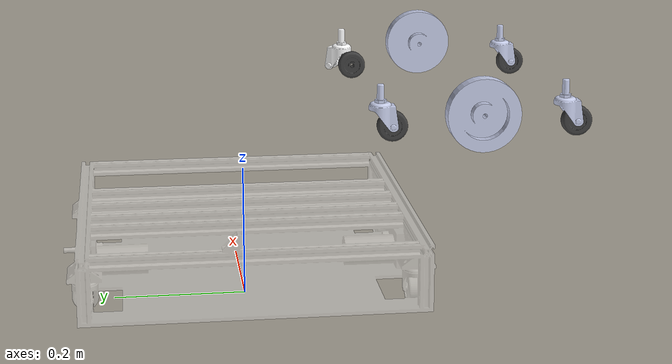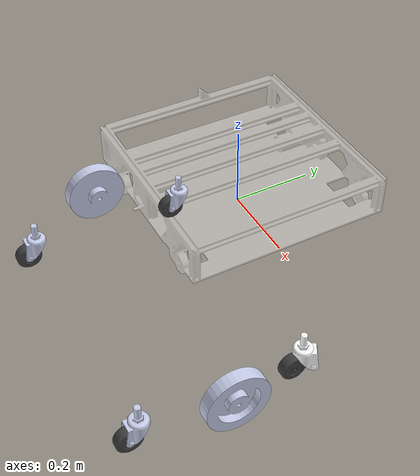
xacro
<?xml version="1.0"?>
<robot xmlns:xacro="http://www.ros.org/wiki/xacro" name="diffdrive" >

  <link name="base_footprint"></link>
  <joint name="base_link_to_base_footprint" type="fixed">
    <origin xyz="0 0 0.05" rpy="0 0 0"/>
    <parent link="base_footprint"/>
    <child link="base_link"/>
  </joint>

 <link
    name="base_link">
    <inertial>
      <origin
        xyz="0.410002757772882 0.223304099954227 0.383656044234519"
        rpy="0 0 0" />
      <mass
        value="0.1" />
      <inertia
        ixx="0.0338286081756613"
        ixy="2.69812394512863E-07"
        ixz="6.04312596661445E-10"
        iyy="0.0771999899846764"
        iyz="1.18867676606539E-08"
        izz="0.0441560434041183" />
    </inertial>
    <visual>
      <origin
        xyz="0 0 0"
        rpy="0 0 0" />
      <geometry>
        <mesh
          filename="file:///$(find my_robot_description)/meshes/diffdrive_meshes/base_link.STL" />
      </geometry>
      <material
        name="">
        <color
          rgba="1 1 1 0.4" />
      </material>
    </visual>
    <collision>
      <origin
        xyz="0 0 0"
        rpy="0 0 0" />
      <geometry>
        <mesh
          filename="file:///$(find my_robot_description)/meshes/diffdrive_meshes/base_link.STL" />
      </geometry>
    </collision>
  </link>

  <link
    name="caster_wheel_01">
    <inertial>
      <origin
        xyz="0.00442419024671004 0.0407882700915736 5.11365806366015E-08"
        rpy="0 0 0" />
      <mass
        value="0.0159163609587196" />
      <inertia
        ixx="0.01" ixy="0.0" ixz="0.0"
        iyy="0.01" iyz="0.0"
        izz="0.01"/>
    </inertial>
    <visual>
      <origin
        xyz="0 0 0"
        rpy="0 0 0" />
      <geometry>
        <mesh
          filename="file:///$(find my_robot_description)/meshes/diffdrive_meshes/caster_wheel_01.STL"/>
      </geometry>
      <material
        name="">
        <color
          rgba="1 1 1 1" />
      </material>
    </visual>
    <collision>
      <origin
        xyz="0 0 0"
        rpy="0 0 0" />
      <geometry>
        <mesh
          filename="file:///$(find my_robot_description)/meshes/diffdrive_meshes/caster_wheel_01.STL" />
      </geometry>
    </collision>
  </link>

  <joint
    name="joint_caster_wheel_01"
    type="continuous">
    <origin
      xyz="0.649922237049609 -0.238297834751047 0.157919253158435"
      rpy="1.5707963267949 0 -1.55646155726161" />
    <parent
      link="base_link" />
    <child
      link="caster_wheel_01" />
    <axis
      xyz="0 1 0" />
  </joint>

  <link
    name="caster_01">
    <inertial>
      <origin
        xyz="0.0214652433425613 0.00180092427509927 0"
        rpy="0 0 0" />
      <mass
        value="0.0351037181525611" />
      <inertia
        ixx="0.01" ixy="0.0" ixz="0.0"
        iyy="0.01" iyz="0.0"
        izz="0.01"/>
    </inertial>
    <visual>
      <origin
        xyz="0 0 0"
        rpy="0 0 0" />
      <geometry>
        <mesh
          filename="file:///$(find my_robot_description)/meshes/diffdrive_meshes/caster_01.STL" />
      </geometry>
      <material
        name="">
        <color
          rgba="0.250980392156863 0.250980392156863 0.250980392156863 1" />
      </material>
    </visual>
    <collision>
      <origin
        xyz="0 0 0"
        rpy="0 0 0" />
      <geometry>
        <mesh
          filename="file:///$(find my_robot_description)/meshes/diffdrive_meshes/caster_01.STL" />
      </geometry>
    </collision>
  </link>

  <joint
    name="joint_caster_01"
    type="continuous">
    <origin
      xyz="0 0 0"
      rpy="0 0 0.296802859073811" />
    <parent
      link="caster_wheel_01" />
    <child
      link="caster_01" />
    <axis
      xyz="0.292464356117457 0.956276424681065 0" />
  </joint>

  <link
    name="caster_wheel_02">
    <inertial>
      <origin
        xyz="-0.00376546230151442 0.0407882700171175 -0.00232266139324588"
        rpy="0 0 0" />
      <mass
        value="0.0159163608550056" />
      <inertia
        ixx="0.01" ixy="0.0" ixz="0.0"
        iyy="0.01" iyz="0.0"
        izz="0.01"/>
    </inertial>
    <visual>
      <origin
        xyz="0 0 0"
        rpy="0 0 0" />
      <geometry>
        <mesh
          filename="file:///$(find my_robot_description)/meshes/diffdrive_meshes/caster_wheel_02.STL" />
      </geometry>
      <material
        name="">
        <color
          rgba="0.792156862745098 0.819607843137255 0.933333333333333 1" />
      </material>
    </visual>
    <collision>
      <origin
        xyz="0 0 0"
        rpy="0 0 0" />
      <geometry>
        <mesh
          filename="file:///$(find my_robot_description)/meshes/diffdrive_meshes/caster_wheel_02.STL" />
      </geometry>
    </collision>
  </link>

  <joint
    name="joint_caster_wheel_02"
    type="continuous">
    <origin
      xyz="0.649922237049609 -0.548297834751047 0.157919253158437"
      rpy="1.5707963267949 0 2.14107688053925" />
    <parent
      link="base_link" />
    <child
      link="caster_wheel_02" />
    <axis
      xyz="0 1 0" />
  </joint>

  <link
    name="caster_02">
    <inertial>
      <origin
        xyz="0.0214652433425611 0.00180092427509934 1.11022302462516E-16"
        rpy="0 0 0" />
      <mass
        value="0.0351037181525611" />
      <inertia
        ixx="0.01" ixy="0.0" ixz="0.0"
        iyy="0.01" iyz="0.0"
        izz="0.01"/>
    </inertial>
    <visual>
      <origin
        xyz="0 0 0"
        rpy="0 0 0" />
      <geometry>
        <mesh
          filename="file:///$(find my_robot_description)/meshes/diffdrive_meshes/caster_02.STL" />
      </geometry>
      <material
        name="">
        <color
          rgba="0.250980392156863 0.250980392156863 0.250980392156863 1" />
      </material>
    </visual>
    <collision>
      <origin
        xyz="0 0 0"
        rpy="0 0 0" />
      <geometry>
        <mesh
          filename="file:///$(find my_robot_description)/meshes/diffdrive_meshes/caster_02.STL" />
      </geometry>
    </collision>
  </link>

  <joint
    name="joint_caster_02"
    type="continuous">
    <origin
      xyz="0 0 0"
      rpy="2.96311522163044 0.525941308677483 2.79662415169577" />
    <parent
      link="caster_wheel_02" />
    <child
      link="caster_02" />
    <axis
      xyz="0.292464356117457 0.956276424681065 0" />
  </joint>

  <link
    name="caster_wheel_03">
    <inertial>
      <origin
        xyz="-0.00376546080228934 0.0407882711178764 -0.00232265994952238"
        rpy="0 0 0" />
      <mass
        value="0.0159163611002415" />
      <inertia
        ixx="0.01" ixy="0.0" ixz="0.0"
        iyy="0.01" iyz="0.0"
        izz="0.01"/>
    </inertial>
    <visual>
      <origin
        xyz="0 0 0"
        rpy="0 0 0" />
      <geometry>
        <mesh
          filename="file:///$(find my_robot_description)/meshes/diffdrive_meshes/caster_wheel_03.STL" />
      </geometry>
      <material
        name="">
        <color
          rgba="0.792156862745098 0.819607843137255 0.933333333333333 1" />
      </material>
    </visual>
    <collision>
      <origin
        xyz="0 0 0"
        rpy="0 0 0" />
      <geometry>
        <mesh
          filename="file:///$(find my_robot_description)/meshes/diffdrive_meshes/caster_wheel_03.STL" />
      </geometry>
    </collision>
  </link>

  <joint
    name="joint_caster_wheel_03"
    type="continuous">
    <origin
      xyz="0.169922237049587 -0.548297834751047 0.157919253158437"
      rpy="1.5707963267949 0 2.11677958982226" />
    <parent
      link="base_link" />
    <child
      link="caster_wheel_03" />
    <axis
      xyz="0 1 0" />
  </joint>
  <link
    name="caster_03">
    <inertial>
      <origin
        xyz="0.0214652433425609 0.00180092427509926 1.11022302462516E-16"
        rpy="0 0 0" />
      <mass
        value="0.0351037181525611" />
      <inertia
        ixx="0.01" ixy="0.0" ixz="0.0"
        iyy="0.01" iyz="0.0"
        izz="0.01"/>
    </inertial>
    <visual>
      <origin
        xyz="0 0 0"
        rpy="0 0 0" />
      <geometry>
        <mesh
          filename="file:///$(find my_robot_description)/meshes/diffdrive_meshes/caster_03.STL" />
      </geometry>
      <material
        name="">
        <color
          rgba="0.250980392156863 0.250980392156863 0.250980392156863 1" />
      </material>
    </visual>
    <collision>
      <origin
        xyz="0 0 0"
        rpy="0 0 0" />
      <geometry>
        <mesh
          filename="file:///$(find my_robot_description)/meshes/diffdrive_meshes/caster_03.STL" />
      </geometry>
    </collision>
  </link>

  <joint
    name="joint_caster_03"
    type="continuous">
    <origin
      xyz="0 0 0"
      rpy="2.96311522163044 0.525941308677473 2.79662415169576" />
    <parent
      link="caster_wheel_03" />
    <child
      link="caster_03" />
    <axis
      xyz="0.292464356117462 0.956276424681064 0" />
  </joint>

  <link
    name="caster_wheel_04">
    <inertial>
      <origin
        xyz="0.0404249060706092 -0.00700596278140952 -5.14370523119201E-08"
        rpy="0 0 0" />
      <mass
        value="0.0159163608704481" />
      <inertia
        ixx="0.01" ixy="0.0" ixz="0.0"
        iyy="0.01" iyz="0.0"
        izz="0.01"/>
    </inertial>
    <visual>
      <origin
        xyz="0 0 0"
        rpy="0 0 0" />
      <geometry>
        <mesh
          filename="file:///$(find my_robot_description)/meshes/diffdrive_meshes/caster_wheel_04.STL" />
      </geometry>
      <material
        name="">
        <color
          rgba="0.792156862745098 0.819607843137255 0.929411764705882 1" />
      </material>
    </visual>
    <collision>
      <origin
        xyz="0 0 0"
        rpy="0 0 0" />
      <geometry>
        <mesh
          filename="file:///$(find my_robot_description)/meshes/diffdrive_meshes/caster_wheel_04.STL" />
      </geometry>
    </collision>
  </link>

  <joint
    name="joint_caster_wheel_04"
    type="continuous">
    <origin
      xyz="0.169922237049587 -0.238297834751047 0.157919253158437"
      rpy="-1.5707963267949 -1.29114800642175 -1.58217190075403" />
    <parent
      link="base_link" />
    <child
      link="caster_wheel_04" />
    <axis
      xyz="0.961152567529158 -0.276017647863517 0" />
  </joint>

  <link
    name="caster_04">
    <inertial>
      <origin
        xyz="0.021465243342561 0.00180092427509938 2.77555756156289E-17"
        rpy="0 0 0" />
      <mass
        value="0.035103718152561" />
      <inertia
        ixx="0.01" ixy="0.0" ixz="0.0"
        iyy="0.01" iyz="0.0"
        izz="0.01"/>
    </inertial>
    <visual>
      <origin
        xyz="0 0 0"
        rpy="0 0 0" />
      <geometry>
        <mesh
          filename="file:///$(find my_robot_description)/meshes/diffdrive_meshes/caster_04.STL" />
      </geometry>
      <material
        name="">
        <color
          rgba="0.250980392156863 0.250980392156863 0.250980392156863 1" />
      </material>
    </visual>
    <collision>
      <origin
        xyz="0 0 0"
        rpy="0 0 0" />
      <geometry>
        <mesh
          filename="file:///$(find my_robot_description)/meshes/diffdrive_meshes/caster_04.STL" />
      </geometry>
    </collision>
  </link>

  <joint
    name="joint_caster_04"
    type="continuous">
    <origin
      xyz="0 0 0"
      rpy="3.14159265358979 0 0.994345147347936" />
    <parent
      link="caster_wheel_04" />
    <child
      link="caster_04" />
    <axis
      xyz="0.292464356117458 0.956276424681065 0" />
  </joint>

  <link
    name="wheel_01">
    <inertial>
      <origin
        xyz="5.55111512312578E-17 0.0257257525083612 5.55111512312578E-17"
        rpy="0 0 0" />
      <mass
        value="5" />
      <inertia
        ixx="0.01" ixy="0.0" ixz="0.0"
        iyy="0.01" iyz="0.0"
        izz="0.01"/>
    </inertial>
    <visual>
      <origin
        xyz="0 0 0"
        rpy="0 0 0" />
      <geometry>
        <mesh
          filename="file:///$(find my_robot_description)/meshes/diffdrive_meshes/wheel_01.STL" />
      </geometry>
      <material
        name="">
        <color
          rgba="0.792156862745098 0.819607843137255 0.933333333333333 1" />
      </material>
    </visual>
    <collision>
      <origin
        xyz="0 0 0"
        rpy="0 0 0" />
      <geometry>
        <mesh
          filename="file:///$(find my_robot_description)/meshes/diffdrive_meshes/wheel_01.STL" />
      </geometry>
    </collision>
  </link>

  <joint
    name="joint_wheel_01"
    type="continuous">
    <origin
      xyz="0.659922237049609 -0.392297834751047 0.200418917757862"
      rpy="3.14159265358979 -0.53712555837446 1.5707963267949" />
    <parent
      link="base_link" />
    <child
      link="wheel_01" />
    <axis
      xyz="0 1 0" />
  </joint>

  <link
    name="wheel_02">
    <inertial>
      <origin
        xyz="0 -0.0152742474916388 2.77555756156289E-17"
        rpy="0 0 0" />
      <mass
        value="5" />
      <inertia
        ixx="0.01" ixy="0.0" ixz="0.0"
        iyy="0.01" iyz="0.0"
        izz="0.01"/>
    </inertial>
    <visual>
      <origin
        xyz="0 0 0"
        rpy="0 0 0" />
      <geometry>
        <mesh
          filename="file:///$(find my_robot_description)/meshes/diffdrive_meshes/wheel_02.STL" />
      </geometry>
      <material
        name="">
        <color
          rgba="0.792156862745098 0.819607843137255 0.933333333333333 1" />
      </material>
    </visual>
    <collision>
      <origin
        xyz="0 0 0"
        rpy="0 0 0" />
      <geometry>
        <mesh
          filename="file:///$(find my_robot_description)/meshes/diffdrive_meshes/wheel_02.STL" />
      </geometry>
    </collision>
  </link>

  <joint
    name="joint_wheel_02"
    type="continuous">
    <origin
      xyz="0.118922237049587 -0.39229783475107 0.200418917757862"
      rpy="0 0.774914173734372 1.5707963267949" />
    <parent
      link="base_link" />
    <child
      link="wheel_02" />
    <axis
      xyz="0 -1 0" />
  </joint>

    <gazebo>
        <plugin name="gazebo_ros_diff_drive" filename="libgazebo_ros_diff_drive.so">
            <!-- Update rate in Hz -->
            <ros>
            <!-- Add a namespace -->
            <namespace></namespace>
            </ros>
            <update_rate>50</update_rate>
            <!-- wheels -->
            <left_joint>joint_wheel_01</left_joint>
            <right_joint>joint_wheel_02</right_joint>
            <!-- kinematics -->
            <wheel_separation>0.55</wheel_separation>
            <wheel_diameter>0.12</wheel_diameter>
            <wheelAcceleration>0.0</wheelAcceleration>
            <!-- Maximum torque which the wheels can produce, in Nm, defaults to 5 Nm -->
            <wheelTorque>5</wheelTorque>
            <!-- input -->
            <command_topic>cmd_vel</command_topic>
            <!-- output -->
            <publish_odom>true</publish_odom>
            <!-- Odometry source, 0 for ENCODER, 1 for WORLD, defaults to WORLD -->
            <odometrySource>1</odometrySource>
            <publish_odom_tf>true</publish_odom_tf>
            <publish_wheel_tf>true</publish_wheel_tf>
            <odometry_topic>odom</odometry_topic>
            <odometry_frame>odom</odometry_frame>
            <robot_base_frame>base_footprint</robot_base_frame>
        </plugin>
    </gazebo>

</robot>
